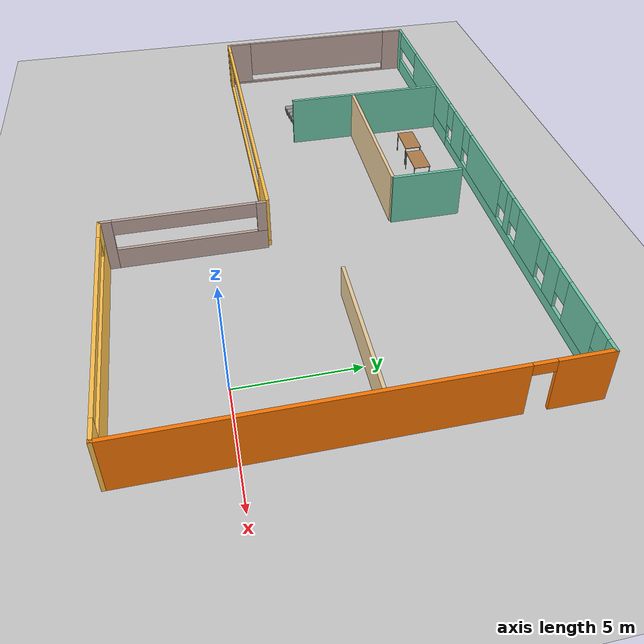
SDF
<sdf version="1.6">
 <world name="default">
  <model name="ground_plane">
   <static>1</static>
   <link name="link">
    <collision name="collision">
     <geometry><plane><normal>0 0 1</normal><size>100 100</size></plane></geometry>
     <surface><friction><ode><mu>100</mu><mu2>50</mu2></ode></friction></surface>
    </collision>
    <visual name="visual">
     <cast_shadows>0</cast_shadows>
     <geometry><plane><normal>0 0 1</normal><size>100 100</size></plane></geometry>
     <material>
      <script><uri>file://media/materials/scripts/gazebo.material</uri><name>Gazebo/Grey</name></script>
     </material>
    </visual>
   </link>
  </model>
  <model name="MyOffice">
   <pose>-9.99386 4.31006 0 0 -0 0</pose>
   <link name="Stairs_1">
    <visual name="Stairs_1_Visual_0">
     <pose>-9.15396 4.81263 0.1 0 -0 1.5708</pose>
     <geometry><box><size>7.73533 0.7 0.2</size></box></geometry>
     <material>
      <script><uri>file://media/materials/scripts/gazebo.material</uri><name>Gazebo/Grey</name></script>
      <ambient>1 1 1 1</ambient>
     </material>
     <meta><layer>0</layer></meta>
    </visual>
    <collision name="Stairs_1_Collision_0">
     <geometry><box><size>7.73533 0.7 0.2</size></box></geometry>
     <pose>-9.15396 4.81263 0.1 0 -0 1.5708</pose>
    </collision>
    <visual name="Stairs_1_Visual_1">
     <pose>-8.45396 4.81263 0.3 0 -0 1.5708</pose>
     <geometry><box><size>7.73533 0.7 0.2</size></box></geometry>
     <material>
      <script><uri>file://media/materials/scripts/gazebo.material</uri><name>Gazebo/Grey</name></script>
      <ambient>1 1 1 1</ambient>
     </material>
     <meta><layer>0</layer></meta>
    </visual>
    <collision name="Stairs_1_Collision_1">
     <geometry><box><size>7.73533 0.7 0.2</size></box></geometry>
     <pose>-8.45396 4.81263 0.3 0 -0 1.5708</pose>
    </collision>
    <visual name="Stairs_1_Visual_2">
     <pose>-7.75396 4.81263 0.5 0 -0 1.5708</pose>
     <geometry><box><size>7.73533 0.7 0.2</size></box></geometry>
     <material>
      <script><uri>file://media/materials/scripts/gazebo.material</uri><name>Gazebo/Grey</name></script>
      <ambient>1 1 1 1</ambient>
     </material>
     <meta><layer>0</layer></meta>
    </visual>
    <collision name="Stairs_1_Collision_2">
     <geometry><box><size>7.73533 0.7 0.2</size></box></geometry>
     <pose>-7.75396 4.81263 0.5 0 -0 1.5708</pose>
    </collision>
    <visual name="Stairs_1_Visual_3">
     <pose>-7.05396 4.81263 0.7 0 -0 1.5708</pose>
     <geometry><box><size>7.73533 0.7 0.2</size></box></geometry>
     <material>
      <script><uri>file://media/materials/scripts/gazebo.material</uri><name>Gazebo/Grey</name></script>
      <ambient>1 1 1 1</ambient>
     </material>
     <meta><layer>0</layer></meta>
    </visual>
    <collision name="Stairs_1_Collision_3">
     <geometry><box><size>7.73533 0.7 0.2</size></box></geometry>
     <pose>-7.05396 4.81263 0.7 0 -0 1.5708</pose>
    </collision>
    <visual name="Stairs_1_Visual_4">
     <pose>-6.35396 4.81263 0.9 0 -0 1.5708</pose>
     <geometry><box><size>7.73533 0.7 0.2</size></box></geometry>
     <material>
      <script><uri>file://media/materials/scripts/gazebo.material</uri><name>Gazebo/Grey</name></script>
      <ambient>1 1 1 1</ambient>
     </material>
     <meta><layer>0</layer></meta>
    </visual>
    <collision name="Stairs_1_Collision_4">
     <geometry><box><size>7.73533 0.7 0.2</size></box></geometry>
     <pose>-6.35396 4.81263 0.9 0 -0 1.5708</pose>
    </collision>
   </link>
   <link name="Wall_1">
    <pose>-13.175 3.5 0 0 0 -1.5708</pose>
    <visual name="Wall_1_Visual_0">
     <pose>-4.66054 0 1.25 0 -0 0</pose>
     <geometry><box><size>1.17891 0.15 2.5</size></box></geometry>
     <material>
      <script><uri>file://media/materials/scripts/gazebo.material</uri><name>Gazebo/Grey</name></script>
      <ambient>0.760784 0.662745 0.627451 1</ambient>
     </material>
     <meta><layer>0</layer></meta>
    </visual>
    <collision name="Wall_1_Collision_0">
     <geometry><box><size>1.17891 0.15 2.5</size></box></geometry>
     <pose>-4.66054 0 1.25 0 -0 0</pose>
    </collision>
    <visual name="Wall_1_Visual_1">
     <pose>0.589456 0 0.05 0 -0 0</pose>
     <geometry><box><size>9.32109 0.15 0.1</size></box></geometry>
     <material>
      <script><uri>file://media/materials/scripts/gazebo.material</uri><name>Gazebo/Grey</name></script>
      <ambient>0.760784 0.662745 0.627451 1</ambient>
     </material>
     <meta><layer>0</layer></meta>
    </visual>
    <collision name="Wall_1_Collision_1">
     <geometry><box><size>9.32109 0.15 0.1</size></box></geometry>
     <pose>0.589456 0 0.05 0 -0 0</pose>
    </collision>
    <visual name="Wall_1_Visual_2">
     <pose>4.58946 0 1.3 0 -0 0</pose>
     <geometry><box><size>1.32109 0.15 2.4</size></box></geometry>
     <material>
      <script><uri>file://media/materials/scripts/gazebo.material</uri><name>Gazebo/Grey</name></script>
      <ambient>0.760784 0.662745 0.627451 1</ambient>
     </material>
     <meta><layer>0</layer></meta>
    </visual>
    <collision name="Wall_1_Collision_2">
     <geometry><box><size>1.32109 0.15 2.4</size></box></geometry>
     <pose>4.58946 0 1.3 0 -0 0</pose>
    </collision>
    <visual name="Wall_1_Visual_3">
     <pose>-0.071087 0 1.5 0 -0 0</pose>
     <geometry><box><size>8 0.15 2</size></box></geometry>
     <material>
      <script><uri>file://media/materials/scripts/gazebo.material</uri><name>Gazebo/Grey</name></script>
      <ambient>0.760784 0.662745 0.627451 1</ambient>
     </material>
     <meta><layer>0</layer></meta>
    </visual>
    <collision name="Wall_1_Collision_3">
     <geometry><box><size>8 0.15 2</size></box></geometry>
     <pose>-0.071087 0 1.5 0 -0 0</pose>
    </collision>
   </link>
   <link name="Wall_11">
    <collision name="Wall_11_Collision">
     <geometry><box><size>7.75 0.15 2.5</size></box></geometry>
     <pose>0 0 1.25 0 -0 0</pose>
    </collision>
    <visual name="Wall_11_Visual">
     <pose>0 0 1.25 0 -0 0</pose>
     <geometry><box><size>7.75 0.15 2.5</size></box></geometry>
     <material>
      <script><uri>file://media/materials/scripts/gazebo.material</uri><name>Gazebo/Grey</name></script>
      <ambient>0.921569 0.807843 0.615686 1</ambient>
     </material>
     <meta><layer>0</layer></meta>
    </visual>
    <pose>-2.18392 4.03899 0 0 -0 0</pose>
   </link>
   <link name="Wall_13">
    <collision name="Wall_13_Collision">
     <geometry><box><size>7.25 0.15 1.5</size></box></geometry>
     <pose>0 0 0.75 0 -0 0</pose>
    </collision>
    <visual name="Wall_13_Visual">
     <pose>0 0 0.75 0 -0 0</pose>
     <geometry><box><size>7.25 0.15 1.5</size></box></geometry>
     <material>
      <script><uri>file://media/materials/scripts/gazebo.material</uri><name>Gazebo/Grey</name></script>
      <ambient>0.921569 0.807843 0.615686 1</ambient>
     </material>
     <meta><layer>0</layer></meta>
    </visual>
    <pose>9.60987 0.795259 0 0 -0 3.14159</pose>
   </link>
   <link name="Wall_15">
    <collision name="Wall_15_Collision">
     <geometry><box><size>7.75 0.15 2.5</size></box></geometry>
     <pose>0 0 1.25 0 -0 0</pose>
    </collision>
    <visual name="Wall_15_Visual">
     <pose>0 0 1.25 0 -0 0</pose>
     <geometry><box><size>7.75 0.15 2.5</size></box></geometry>
     <material>
      <script><uri>file://media/materials/scripts/gazebo.material</uri><name>Gazebo/Grey</name></script>
      <ambient>0.435294 0.796078 0.67451 1</ambient>
     </material>
     <meta><layer>0</layer></meta>
    </visual>
    <pose>-5.9943 4.72008 0 0 0 -1.5708</pose>
   </link>
   <link name="Wall_17">
    <collision name="Wall_17_Collision">
     <geometry><box><size>3.25 0.15 2.5</size></box></geometry>
     <pose>0 0 1.25 0 -0 0</pose>
    </collision>
    <visual name="Wall_17_Visual">
     <pose>0 0 1.25 0 -0 0</pose>
     <geometry><box><size>3.25 0.15 2.5</size></box></geometry>
     <material>
      <script><uri>file://media/materials/scripts/gazebo.material</uri><name>Gazebo/Grey</name></script>
      <ambient>0.435294 0.796078 0.67451 1</ambient>
     </material>
     <meta><layer>0</layer></meta>
    </visual>
    <pose>1.73138 5.6554 0 0 -0 1.5708</pose>
   </link>
   <link name="Wall_2">
    <pose>-5.5 -1.675 0 0 -0 0</pose>
    <visual name="Wall_2_Visual_0">
     <pose>-7.24406 0 1.25 0 -0 0</pose>
     <geometry><box><size>1.01187 0.15 2.5</size></box></geometry>
     <material>
      <script><uri>file://media/materials/scripts/gazebo.material</uri><name>Gazebo/Grey</name></script>
      <ambient>1 0.764706 0.305882 1</ambient>
     </material>
     <meta><layer>0</layer></meta>
    </visual>
    <collision name="Wall_2_Collision_0">
     <geometry><box><size>1.01187 0.15 2.5</size></box></geometry>
     <pose>-7.24406 0 1.25 0 -0 0</pose>
    </collision>
    <visual name="Wall_2_Visual_1">
     <pose>0.505935 0 0.15 0 -0 0</pose>
     <geometry><box><size>14.4881 0.15 0.3</size></box></geometry>
     <material>
      <script><uri>file://media/materials/scripts/gazebo.material</uri><name>Gazebo/Grey</name></script>
      <ambient>1 0.764706 0.305882 1</ambient>
     </material>
     <meta><layer>0</layer></meta>
    </visual>
    <collision name="Wall_2_Collision_1">
     <geometry><box><size>14.4881 0.15 0.3</size></box></geometry>
     <pose>0.505935 0 0.15 0 -0 0</pose>
    </collision>
    <visual name="Wall_2_Visual_2">
     <pose>6.50594 0 1.4 0 -0 0</pose>
     <geometry><box><size>2.48813 0.15 2.2</size></box></geometry>
     <material>
      <script><uri>file://media/materials/scripts/gazebo.material</uri><name>Gazebo/Grey</name></script>
      <ambient>1 0.764706 0.305882 1</ambient>
     </material>
     <meta><layer>0</layer></meta>
    </visual>
    <collision name="Wall_2_Collision_2">
     <geometry><box><size>2.48813 0.15 2.2</size></box></geometry>
     <pose>6.50594 0 1.4 0 -0 0</pose>
    </collision>
    <visual name="Wall_2_Visual_3">
     <pose>-0.738131 0 2.3 0 -0 0</pose>
     <geometry><box><size>12 0.15 0.4</size></box></geometry>
     <material>
      <script><uri>file://media/materials/scripts/gazebo.material</uri><name>Gazebo/Grey</name></script>
      <ambient>1 0.764706 0.305882 1</ambient>
     </material>
     <meta><layer>0</layer></meta>
    </visual>
    <collision name="Wall_2_Collision_3">
     <geometry><box><size>12 0.15 0.4</size></box></geometry>
     <pose>-0.738131 0 2.3 0 -0 0</pose>
    </collision>
   </link>
   <link name="Wall_4">
    <pose>0 8.675 0 0 -0 0</pose>
    <visual name="Wall_4_Visual_0">
     <pose>-12.9493 0 1.25 0 -0 0</pose>
     <geometry><box><size>0.601453 0.15 2.5</size></box></geometry>
     <material>
      <script><uri>file://media/materials/scripts/gazebo.material</uri><name>Gazebo/Grey</name></script>
      <ambient>0.435294 0.796078 0.67451 1</ambient>
     </material>
     <meta><layer>0</layer></meta>
    </visual>
    <collision name="Wall_4_Collision_0">
     <geometry><box><size>0.601453 0.15 2.5</size></box></geometry>
     <pose>-12.9493 0 1.25 0 -0 0</pose>
    </collision>
    <visual name="Wall_4_Visual_1">
     <pose>-8.30819 0 0.4 0 -0 0</pose>
     <geometry><box><size>8.68071 0.15 0.8</size></box></geometry>
     <material>
      <script><uri>file://media/materials/scripts/gazebo.material</uri><name>Gazebo/Grey</name></script>
      <ambient>0.435294 0.796078 0.67451 1</ambient>
     </material>
     <meta><layer>0</layer></meta>
    </visual>
    <collision name="Wall_4_Collision_1">
     <geometry><box><size>8.68071 0.15 0.8</size></box></geometry>
     <pose>-8.30819 0 0.4 0 -0 0</pose>
    </collision>
    <visual name="Wall_4_Visual_2">
     <pose>4.64108 0 0.25 0 -0 0</pose>
     <geometry><box><size>17.2178 0.15 0.5</size></box></geometry>
     <material>
      <script><uri>file://media/materials/scripts/gazebo.material</uri><name>Gazebo/Grey</name></script>
      <ambient>0.435294 0.796078 0.67451 1</ambient>
     </material>
     <meta><layer>0</layer></meta>
    </visual>
    <collision name="Wall_4_Collision_2">
     <geometry><box><size>17.2178 0.15 0.5</size></box></geometry>
     <pose>4.64108 0 0.25 0 -0 0</pose>
    </collision>
    <visual name="Wall_4_Visual_3">
     <pose>-2.41009 0 1.5 0 -0 0</pose>
     <geometry><box><size>1.51549 0.15 2</size></box></geometry>
     <material>
      <script><uri>file://media/materials/scripts/gazebo.material</uri><name>Gazebo/Grey</name></script>
      <ambient>0.435294 0.796078 0.67451 1</ambient>
     </material>
     <meta><layer>0</layer></meta>
    </visual>
    <collision name="Wall_4_Collision_3">
     <geometry><box><size>1.51549 0.15 2</size></box></geometry>
     <pose>-2.41009 0 1.5 0 -0 0</pose>
    </collision>
    <visual name="Wall_4_Visual_4">
     <pose>1.09786 0 1.5 0 -0 0</pose>
     <geometry><box><size>3.90042 0.15 2</size></box></geometry>
     <material>
      <script><uri>file://media/materials/scripts/gazebo.material</uri><name>Gazebo/Grey</name></script>
      <ambient>0.435294 0.796078 0.67451 1</ambient>
     </material>
     <meta><layer>0</layer></meta>
    </visual>
    <collision name="Wall_4_Collision_4">
     <geometry><box><size>3.90042 0.15 2</size></box></geometry>
     <pose>1.09786 0 1.5 0 -0 0</pose>
    </collision>
    <visual name="Wall_4_Visual_5">
     <pose>4.10318 0 1.5 0 -0 0</pose>
     <geometry><box><size>0.510201 0.15 2</size></box></geometry>
     <material>
      <script><uri>file://media/materials/scripts/gazebo.material</uri><name>Gazebo/Grey</name></script>
      <ambient>0.435294 0.796078 0.67451 1</ambient>
     </material>
     <meta><layer>0</layer></meta>
    </visual>
    <collision name="Wall_4_Collision_5">
     <geometry><box><size>0.510201 0.15 2</size></box></geometry>
     <pose>4.10318 0 1.5 0 -0 0</pose>
    </collision>
    <visual name="Wall_4_Visual_6">
     <pose>6.17414 0 1.5 0 -0 0</pose>
     <geometry><box><size>2.03172 0.15 2</size></box></geometry>
     <material>
      <script><uri>file://media/materials/scripts/gazebo.material</uri><name>Gazebo/Grey</name></script>
      <ambient>0.435294 0.796078 0.67451 1</ambient>
     </material>
     <meta><layer>0</layer></meta>
    </visual>
    <collision name="Wall_4_Collision_6">
     <geometry><box><size>2.03172 0.15 2</size></box></geometry>
     <pose>6.17414 0 1.5 0 -0 0</pose>
    </collision>
    <visual name="Wall_4_Visual_7">
     <pose>8.46963 0 1.5 0 -0 0</pose>
     <geometry><box><size>0.959263 0.15 2</size></box></geometry>
     <material>
      <script><uri>file://media/materials/scripts/gazebo.material</uri><name>Gazebo/Grey</name></script>
      <ambient>0.435294 0.796078 0.67451 1</ambient>
     </material>
     <meta><layer>0</layer></meta>
    </visual>
    <collision name="Wall_4_Collision_7">
     <geometry><box><size>0.959263 0.15 2</size></box></geometry>
     <pose>8.46963 0 1.5 0 -0 0</pose>
    </collision>
    <visual name="Wall_4_Visual_8">
     <pose>10.8153 0 1.5 0 -0 0</pose>
     <geometry><box><size>2.1321 0.15 2</size></box></geometry>
     <material>
      <script><uri>file://media/materials/scripts/gazebo.material</uri><name>Gazebo/Grey</name></script>
      <ambient>0.435294 0.796078 0.67451 1</ambient>
     </material>
     <meta><layer>0</layer></meta>
    </visual>
    <collision name="Wall_4_Collision_8">
     <geometry><box><size>2.1321 0.15 2</size></box></geometry>
     <pose>10.8153 0 1.5 0 -0 0</pose>
    </collision>
    <visual name="Wall_4_Visual_9">
     <pose>12.9657 0 1.5 0 -0 0</pose>
     <geometry><box><size>0.568637 0.15 2</size></box></geometry>
     <material>
      <script><uri>file://media/materials/scripts/gazebo.material</uri><name>Gazebo/Grey</name></script>
      <ambient>0.435294 0.796078 0.67451 1</ambient>
     </material>
     <meta><layer>0</layer></meta>
    </visual>
    <collision name="Wall_4_Collision_9">
     <geometry><box><size>0.568637 0.15 2</size></box></geometry>
     <pose>12.9657 0 1.5 0 -0 0</pose>
    </collision>
    <visual name="Wall_4_Visual_10">
     <pose>-6.90819 0 1.65 0 -0 0</pose>
     <geometry><box><size>5.88071 0.15 1.7</size></box></geometry>
     <material>
      <script><uri>file://media/materials/scripts/gazebo.material</uri><name>Gazebo/Grey</name></script>
      <ambient>0.435294 0.796078 0.67451 1</ambient>
     </material>
     <meta><layer>0</layer></meta>
    </visual>
    <collision name="Wall_4_Collision_10">
     <geometry><box><size>5.88071 0.15 1.7</size></box></geometry>
     <pose>-6.90819 0 1.65 0 -0 0</pose>
    </collision>
    <visual name="Wall_4_Visual_11">
     <pose>-1.25235 0 1.9 0 -0 0</pose>
     <geometry><box><size>0.8 0.15 1.2</size></box></geometry>
     <material>
      <script><uri>file://media/materials/scripts/gazebo.material</uri><name>Gazebo/Grey</name></script>
      <ambient>0.435294 0.796078 0.67451 1</ambient>
     </material>
     <meta><layer>0</layer></meta>
    </visual>
    <collision name="Wall_4_Collision_11">
     <geometry><box><size>0.8 0.15 1.2</size></box></geometry>
     <pose>-1.25235 0 1.9 0 -0 0</pose>
    </collision>
    <visual name="Wall_4_Visual_12">
     <pose>3.44807 0 1.9 0 -0 0</pose>
     <geometry><box><size>0.8 0.15 1.2</size></box></geometry>
     <material>
      <script><uri>file://media/materials/scripts/gazebo.material</uri><name>Gazebo/Grey</name></script>
      <ambient>0.435294 0.796078 0.67451 1</ambient>
     </material>
     <meta><layer>0</layer></meta>
    </visual>
    <collision name="Wall_4_Collision_12">
     <geometry><box><size>0.8 0.15 1.2</size></box></geometry>
     <pose>3.44807 0 1.9 0 -0 0</pose>
    </collision>
    <visual name="Wall_4_Visual_13">
     <pose>4.75828 0 1.9 0 -0 0</pose>
     <geometry><box><size>0.8 0.15 1.2</size></box></geometry>
     <material>
      <script><uri>file://media/materials/scripts/gazebo.material</uri><name>Gazebo/Grey</name></script>
      <ambient>0.435294 0.796078 0.67451 1</ambient>
     </material>
     <meta><layer>0</layer></meta>
    </visual>
    <collision name="Wall_4_Collision_13">
     <geometry><box><size>0.8 0.15 1.2</size></box></geometry>
     <pose>4.75828 0 1.9 0 -0 0</pose>
    </collision>
    <visual name="Wall_4_Visual_14">
     <pose>7.59 0 1.9 0 -0 0</pose>
     <geometry><box><size>0.8 0.15 1.2</size></box></geometry>
     <material>
      <script><uri>file://media/materials/scripts/gazebo.material</uri><name>Gazebo/Grey</name></script>
      <ambient>0.435294 0.796078 0.67451 1</ambient>
     </material>
     <meta><layer>0</layer></meta>
    </visual>
    <collision name="Wall_4_Collision_14">
     <geometry><box><size>0.8 0.15 1.2</size></box></geometry>
     <pose>7.59 0 1.9 0 -0 0</pose>
    </collision>
    <visual name="Wall_4_Visual_15">
     <pose>9.34926 0 1.9 0 -0 0</pose>
     <geometry><box><size>0.8 0.15 1.2</size></box></geometry>
     <material>
      <script><uri>file://media/materials/scripts/gazebo.material</uri><name>Gazebo/Grey</name></script>
      <ambient>0.435294 0.796078 0.67451 1</ambient>
     </material>
     <meta><layer>0</layer></meta>
    </visual>
    <collision name="Wall_4_Collision_15">
     <geometry><box><size>0.8 0.15 1.2</size></box></geometry>
     <pose>9.34926 0 1.9 0 -0 0</pose>
    </collision>
    <visual name="Wall_4_Visual_16">
     <pose>12.2814 0 1.9 0 -0 0</pose>
     <geometry><box><size>0.8 0.15 1.2</size></box></geometry>
     <material>
      <script><uri>file://media/materials/scripts/gazebo.material</uri><name>Gazebo/Grey</name></script>
      <ambient>0.435294 0.796078 0.67451 1</ambient>
     </material>
     <meta><layer>0</layer></meta>
    </visual>
    <collision name="Wall_4_Collision_16">
     <geometry><box><size>0.8 0.15 1.2</size></box></geometry>
     <pose>12.2814 0 1.9 0 -0 0</pose>
    </collision>
    <visual name="Wall_4_Visual_17">
     <pose>-3.56784 0 1.9 0 -0 0</pose>
     <geometry><box><size>0.8 0.15 1.2</size></box></geometry>
     <material>
      <script><uri>file://media/materials/scripts/gazebo.material</uri><name>Gazebo/Grey</name></script>
      <ambient>0.435294 0.796078 0.67451 1</ambient>
     </material>
     <meta><layer>0</layer></meta>
    </visual>
    <collision name="Wall_4_Collision_17">
     <geometry><box><size>0.8 0.15 1.2</size></box></geometry>
     <pose>-3.56784 0 1.9 0 -0 0</pose>
    </collision>
    <visual name="Wall_4_Visual_18">
     <pose>-11.2485 0 2.05 0 -0 0</pose>
     <geometry><box><size>2.8 0.15 0.9</size></box></geometry>
     <material>
      <script><uri>file://media/materials/scripts/gazebo.material</uri><name>Gazebo/Grey</name></script>
      <ambient>0.435294 0.796078 0.67451 1</ambient>
     </material>
     <meta><layer>0</layer></meta>
    </visual>
    <collision name="Wall_4_Collision_18">
     <geometry><box><size>2.8 0.15 0.9</size></box></geometry>
     <pose>-11.2485 0 2.05 0 -0 0</pose>
    </collision>
   </link>
   <link name="Wall_5">
    <pose>13.175 0 0 0 0 -1.5708</pose>
    <visual name="Wall_5_Visual_0">
     <pose>-7.64597 0 1.25 0 -0 0</pose>
     <geometry><box><size>2.20807 0.15 2.5</size></box></geometry>
     <material>
      <script><uri>file://media/materials/scripts/gazebo.material</uri><name>Gazebo/Grey</name></script>
      <ambient>0.996078 0.47451 0.0196078 1</ambient>
     </material>
     <meta><layer>0</layer></meta>
    </visual>
    <collision name="Wall_5_Collision_0">
     <geometry><box><size>2.20807 0.15 2.5</size></box></geometry>
     <pose>-7.64597 0 1.25 0 -0 0</pose>
    </collision>
    <visual name="Wall_5_Visual_1">
     <pose>1.55403 0 1.25 0 -0 0</pose>
     <geometry><box><size>14.3919 0.15 2.5</size></box></geometry>
     <material>
      <script><uri>file://media/materials/scripts/gazebo.material</uri><name>Gazebo/Grey</name></script>
      <ambient>0.996078 0.47451 0.0196078 1</ambient>
     </material>
     <meta><layer>0</layer></meta>
    </visual>
    <collision name="Wall_5_Collision_1">
     <geometry><box><size>14.3919 0.15 2.5</size></box></geometry>
     <pose>1.55403 0 1.25 0 -0 0</pose>
    </collision>
    <visual name="Wall_5_Visual_2">
     <pose>-6.09193 0 2.25 0 -0 0</pose>
     <geometry><box><size>0.9 0.15 0.5</size></box></geometry>
     <material>
      <script><uri>file://media/materials/scripts/gazebo.material</uri><name>Gazebo/Grey</name></script>
      <ambient>0.996078 0.47451 0.0196078 1</ambient>
     </material>
     <meta><layer>0</layer></meta>
    </visual>
    <collision name="Wall_5_Collision_2">
     <geometry><box><size>0.9 0.15 0.5</size></box></geometry>
     <pose>-6.09193 0 2.25 0 -0 0</pose>
    </collision>
   </link>
   <link name="Wall_7">
    <pose>7.75 -8.675 0 0 -0 3.14159</pose>
    <visual name="Wall_7_Visual_0">
     <pose>-5.02514 0 1.25 0 -0 0</pose>
     <geometry><box><size>0.949727 0.15 2.5</size></box></geometry>
     <material>
      <script><uri>file://media/materials/scripts/gazebo.material</uri><name>Gazebo/Grey</name></script>
      <ambient>1 0.764706 0.305882 1</ambient>
     </material>
     <meta><layer>0</layer></meta>
    </visual>
    <collision name="Wall_7_Collision_0">
     <geometry><box><size>0.949727 0.15 2.5</size></box></geometry>
     <pose>-5.02514 0 1.25 0 -0 0</pose>
    </collision>
    <visual name="Wall_7_Visual_1">
     <pose>0.474864 0 0.75 0 -0 0</pose>
     <geometry><box><size>10.0503 0.15 1.5</size></box></geometry>
     <material>
      <script><uri>file://media/materials/scripts/gazebo.material</uri><name>Gazebo/Grey</name></script>
      <ambient>1 0.764706 0.305882 1</ambient>
     </material>
     <meta><layer>0</layer></meta>
    </visual>
    <collision name="Wall_7_Collision_1">
     <geometry><box><size>10.0503 0.15 1.5</size></box></geometry>
     <pose>0.474864 0 0.75 0 -0 0</pose>
    </collision>
    <visual name="Wall_7_Visual_2">
     <pose>4.97486 0 2 0 -0 0</pose>
     <geometry><box><size>1.05027 0.15 1</size></box></geometry>
     <material>
      <script><uri>file://media/materials/scripts/gazebo.material</uri><name>Gazebo/Grey</name></script>
      <ambient>1 0.764706 0.305882 1</ambient>
     </material>
     <meta><layer>0</layer></meta>
    </visual>
    <collision name="Wall_7_Collision_2">
     <geometry><box><size>1.05027 0.15 1</size></box></geometry>
     <pose>4.97486 0 2 0 -0 0</pose>
    </collision>
    <visual name="Wall_7_Visual_3">
     <pose>-0.050273 0 2.3 0 -0 0</pose>
     <geometry><box><size>9 0.15 0.4</size></box></geometry>
     <material>
      <script><uri>file://media/materials/scripts/gazebo.material</uri><name>Gazebo/Grey</name></script>
      <ambient>1 0.764706 0.305882 1</ambient>
     </material>
     <meta><layer>0</layer></meta>
    </visual>
    <collision name="Wall_7_Collision_3">
     <geometry><box><size>9 0.15 0.4</size></box></geometry>
     <pose>-0.050273 0 2.3 0 -0 0</pose>
    </collision>
   </link>
   <link name="Wall_8">
    <pose>2.325 -5.25 0 0 -0 1.5708</pose>
    <visual name="Wall_8_Visual_0">
     <pose>-3.21189 0 1.25 0 -0 0</pose>
     <geometry><box><size>0.576225 0.15 2.5</size></box></geometry>
     <material>
      <script><uri>file://media/materials/scripts/gazebo.material</uri><name>Gazebo/Grey</name></script>
      <ambient>0.760784 0.662745 0.627451 1</ambient>
     </material>
     <meta><layer>0</layer></meta>
    </visual>
    <collision name="Wall_8_Collision_0">
     <geometry><box><size>0.576225 0.15 2.5</size></box></geometry>
     <pose>-3.21189 0 1.25 0 -0 0</pose>
    </collision>
    <visual name="Wall_8_Visual_1">
     <pose>0.288113 0 0.5 0 -0 0</pose>
     <geometry><box><size>6.42378 0.15 1</size></box></geometry>
     <material>
      <script><uri>file://media/materials/scripts/gazebo.material</uri><name>Gazebo/Grey</name></script>
      <ambient>0.760784 0.662745 0.627451 1</ambient>
     </material>
     <meta><layer>0</layer></meta>
    </visual>
    <collision name="Wall_8_Collision_1">
     <geometry><box><size>6.42378 0.15 1</size></box></geometry>
     <pose>0.288113 0 0.5 0 -0 0</pose>
    </collision>
    <visual name="Wall_8_Visual_2">
     <pose>3.28811 0 1.75 0 -0 0</pose>
     <geometry><box><size>0.423775 0.15 1.5</size></box></geometry>
     <material>
      <script><uri>file://media/materials/scripts/gazebo.material</uri><name>Gazebo/Grey</name></script>
      <ambient>0.760784 0.662745 0.627451 1</ambient>
     </material>
     <meta><layer>0</layer></meta>
    </visual>
    <collision name="Wall_8_Collision_2">
     <geometry><box><size>0.423775 0.15 1.5</size></box></geometry>
     <pose>3.28811 0 1.75 0 -0 0</pose>
    </collision>
    <visual name="Wall_8_Visual_3">
     <pose>0.076225 0 2.15 0 -0 0</pose>
     <geometry><box><size>6 0.15 0.7</size></box></geometry>
     <material>
      <script><uri>file://media/materials/scripts/gazebo.material</uri><name>Gazebo/Grey</name></script>
      <ambient>0.760784 0.662745 0.627451 1</ambient>
     </material>
     <meta><layer>0</layer></meta>
    </visual>
    <collision name="Wall_8_Collision_3">
     <geometry><box><size>6 0.15 0.7</size></box></geometry>
     <pose>0.076225 0 2.15 0 -0 0</pose>
    </collision>
   </link>
   <static>1</static>
  </model>
  <model name="table_8">
   <static>1</static>
   <link name="link">
    <collision name="surface">
     <pose>0 0 1 0 -0 0</pose>
     <geometry><box><size>1.5 0.8 0.03</size></box></geometry>
     <surface><friction><ode><mu>0.6</mu><mu2>0.6</mu2></ode></friction></surface>
    </collision>
    <visual name="visual1">
     <pose>0 0 1 0 -0 0</pose>
     <geometry><box><size>1.5 0.8 0.03</size></box></geometry>
     <material>
      <script><uri>file://media/materials/scripts/gazebo.material</uri><name>Gazebo/Wood</name></script>
     </material>
    </visual>
    <collision name="front_left_leg">
     <pose>0.68 0.38 0.5 0 -0 0</pose>
     <geometry><cylinder><radius>0.02</radius><length>1</length></cylinder></geometry>
    </collision>
    <visual name="front_left_leg">
     <pose>0.68 0.38 0.5 0 -0 0</pose>
     <geometry><cylinder><radius>0.02</radius><length>1</length></cylinder></geometry>
     <material>
      <script><uri>file://media/materials/scripts/gazebo.material</uri><name>Gazebo/Grey</name></script>
     </material>
    </visual>
    <collision name="front_right_leg">
     <pose>0.68 -0.38 0.5 0 -0 0</pose>
     <geometry><cylinder><radius>0.02</radius><length>1</length></cylinder></geometry>
    </collision>
    <visual name="front_right_leg">
     <pose>0.68 -0.38 0.5 0 -0 0</pose>
     <geometry><cylinder><radius>0.02</radius><length>1</length></cylinder></geometry>
     <material>
      <script><uri>file://media/materials/scripts/gazebo.material</uri><name>Gazebo/Grey</name></script>
     </material>
    </visual>
    <collision name="back_right_leg">
     <pose>-0.68 -0.38 0.5 0 -0 0</pose>
     <geometry><cylinder><radius>0.02</radius><length>1</length></cylinder></geometry>
    </collision>
    <visual name="back_right_leg">
     <pose>-0.68 -0.38 0.5 0 -0 0</pose>
     <geometry><cylinder><radius>0.02</radius><length>1</length></cylinder></geometry>
     <material>
      <script><uri>file://media/materials/scripts/gazebo.material</uri><name>Gazebo/Grey</name></script>
     </material>
    </visual>
    <collision name="back_left_leg">
     <pose>-0.68 0.38 0.5 0 -0 0</pose>
     <geometry><cylinder><radius>0.02</radius><length>1</length></cylinder></geometry>
    </collision>
    <visual name="back_left_leg">
     <pose>-0.68 0.38 0.5 0 -0 0</pose>
     <geometry><cylinder><radius>0.02</radius><length>1</length></cylinder></geometry>
     <material>
      <script><uri>file://media/materials/scripts/gazebo.material</uri><name>Gazebo/Grey</name></script>
     </material>
    </visual>
   </link>
   <pose>-13.3277 10.6977 0 0 -0 0</pose>
  </model>
  <model name="table_9">
   <static>1</static>
   <link name="link">
    <collision name="surface">
     <pose>0 0 1 0 -0 0</pose>
     <geometry><box><size>1.5 0.8 0.03</size></box></geometry>
     <surface><friction><ode><mu>0.6</mu><mu2>0.6</mu2></ode></friction></surface>
    </collision>
    <visual name="visual1">
     <pose>0 0 1 0 -0 0</pose>
     <geometry><box><size>1.5 0.8 0.03</size></box></geometry>
     <material>
      <script><uri>file://media/materials/scripts/gazebo.material</uri><name>Gazebo/Wood</name></script>
     </material>
    </visual>
    <collision name="front_left_leg">
     <pose>0.68 0.38 0.5 0 -0 0</pose>
     <geometry><cylinder><radius>0.02</radius><length>1</length></cylinder></geometry>
    </collision>
    <visual name="front_left_leg">
     <pose>0.68 0.38 0.5 0 -0 0</pose>
     <geometry><cylinder><radius>0.02</radius><length>1</length></cylinder></geometry>
     <material>
      <script><uri>file://media/materials/scripts/gazebo.material</uri><name>Gazebo/Grey</name></script>
     </material>
    </visual>
    <collision name="front_right_leg">
     <pose>0.68 -0.38 0.5 0 -0 0</pose>
     <geometry><cylinder><radius>0.02</radius><length>1</length></cylinder></geometry>
    </collision>
    <visual name="front_right_leg">
     <pose>0.68 -0.38 0.5 0 -0 0</pose>
     <geometry><cylinder><radius>0.02</radius><length>1</length></cylinder></geometry>
     <material>
      <script><uri>file://media/materials/scripts/gazebo.material</uri><name>Gazebo/Grey</name></script>
     </material>
    </visual>
    <collision name="back_right_leg">
     <pose>-0.68 -0.38 0.5 0 -0 0</pose>
     <geometry><cylinder><radius>0.02</radius><length>1</length></cylinder></geometry>
    </collision>
    <visual name="back_right_leg">
     <pose>-0.68 -0.38 0.5 0 -0 0</pose>
     <geometry><cylinder><radius>0.02</radius><length>1</length></cylinder></geometry>
     <material>
      <script><uri>file://media/materials/scripts/gazebo.material</uri><name>Gazebo/Grey</name></script>
     </material>
    </visual>
    <collision name="back_left_leg">
     <pose>-0.68 0.38 0.5 0 -0 0</pose>
     <geometry><cylinder><radius>0.02</radius><length>1</length></cylinder></geometry>
    </collision>
    <visual name="back_left_leg">
     <pose>-0.68 0.38 0.5 0 -0 0</pose>
     <geometry><cylinder><radius>0.02</radius><length>1</length></cylinder></geometry>
     <material>
      <script><uri>file://media/materials/scripts/gazebo.material</uri><name>Gazebo/Grey</name></script>
     </material>
    </visual>
   </link>
   <pose>-11.5508 10.6229 0 0 -0 0</pose>
  </model>
 </world>
</sdf>
